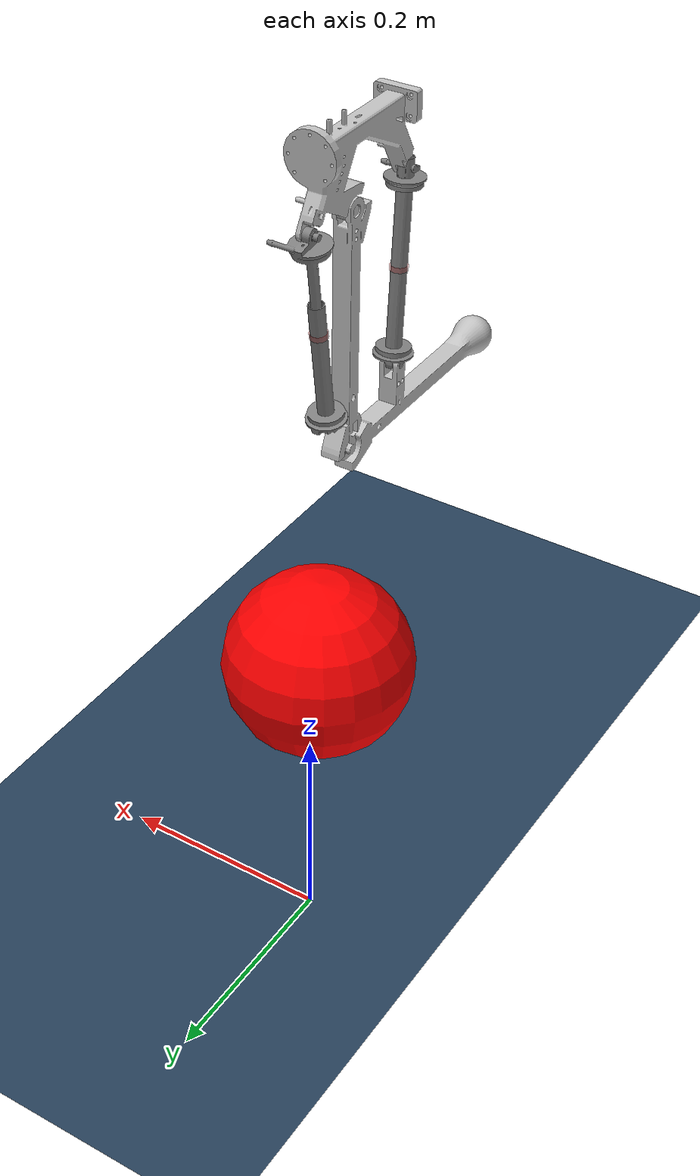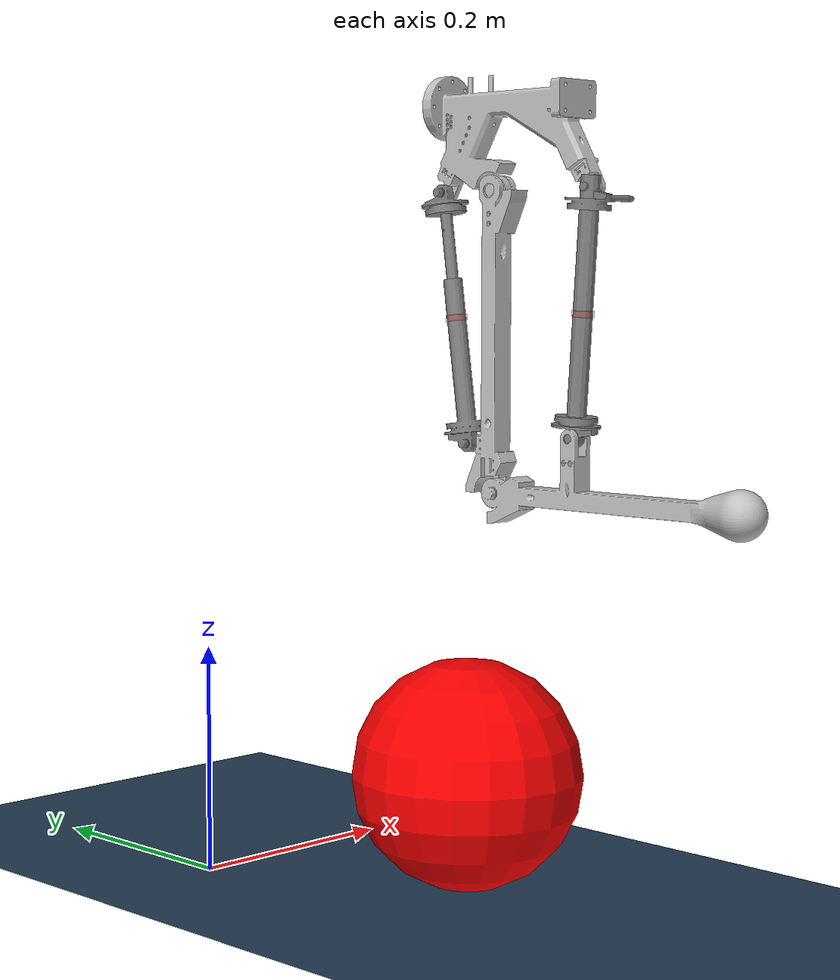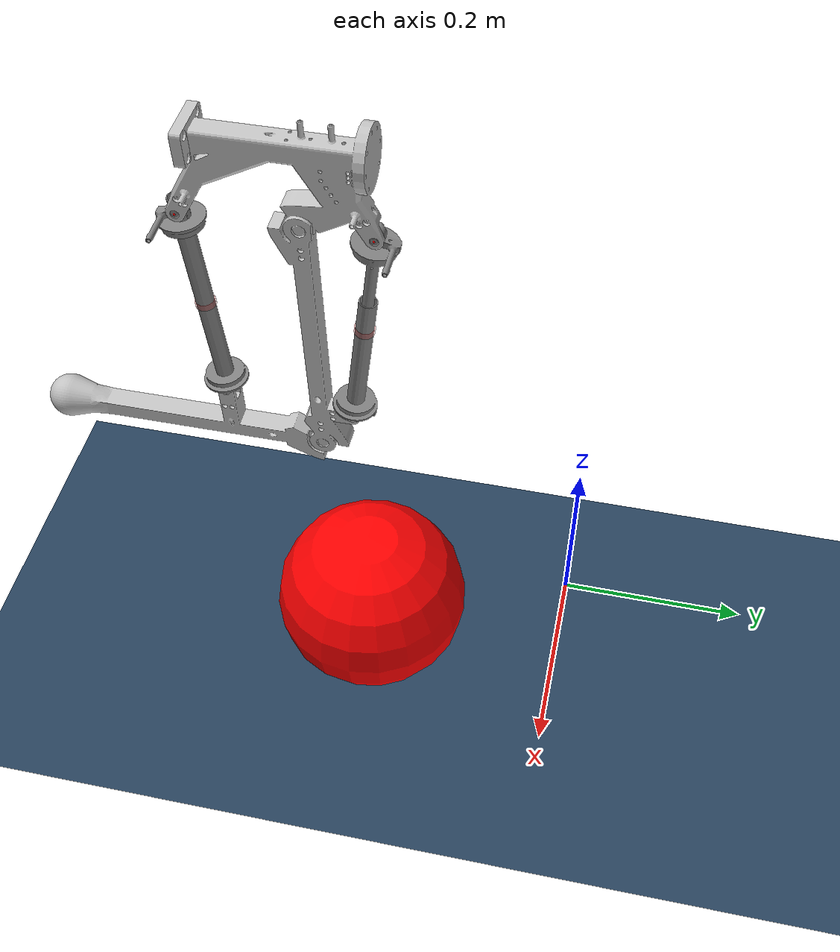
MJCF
<mujoco model="v2_4">
  <compiler angle="radian"/>
  <option timestep="0.005" iterations="1000" gravity="0 0 -9.8" tolerance="1e-10"/>
  <option>
  </option>
  <!-- ball size: 0.005 for sim and 0.01 for drawing the picture -->

  <default>
    <geom density="418"/>
  </default>

  <asset>
    <texture name="grid" type="2d" builtin="checker" rgb1=".1 .2 .3"
      rgb2=".2 .3 .4" width="300" height="300"/>
    <material name="grid" texture="grid" texrepeat="8 8" reflectance=".2"/>

    <mesh name="base_link" file="base_single.STL"/>
    <mesh name="LF_Thigh" file="LF_Thigh.STL"/>
    <mesh name="LF_Calf" file="LF_Calf.STL"/>
    <mesh name="RF_Thigh" file="RF_Thigh.STL"/>
    <mesh name="RF_Calf" file="RF_Calf.STL"/>
    <mesh name="LB_Thigh" file="LB_Thigh.STL"/>
    <mesh name="LB_Calf" file="LB_Calf.STL"/>
    <mesh name="RB_Thigh" file="RB_Thigh.STL"/>
    <mesh name="RB_Calf" file="RB_Calf.STL"/>
    <mesh name="LF_MAA_UPLink" file="LF_MAA_UPLink.STL"/>
    <mesh name="LF_MAA_FM_Link" file="LF_MAA_FM_Link.STL"/>
    <mesh name="LF_MAA_LOLink" file="LF_MAA_LOLink.STL"/>
    <mesh name="RF_MAA_UPLink" file="RF_MAA_UPLink.STL"/>
    <mesh name="RF_MAA_FM_Link" file="RF_MAA_FM_Link.STL"/>
    <mesh name="RF_MAA_LOLink" file="RF_MAA_LOLink.STL"/>
    <mesh name="LB_MAA_UPLink" file="LB_MAA_UPLink.STL"/>
    <mesh name="LB_MAA_FM_Link" file="LB_MAA_FM_Link.STL"/>
    <mesh name="LB_MAA_LOLink" file="LB_MAA_LOLink.STL"/>
    <mesh name="RB_MAA_UPLink" file="RB_MAA_UPLink.STL"/>
    <mesh name="RB_MAA_FM_Link" file="RB_MAA_FM_Link.STL"/>
    <mesh name="RB_MAA_LOLink" file="RB_MAA_LOLink.STL"/>
    <mesh name="LF_BAA_UPLink" file="LF_BAA_UPLink.STL"/>
    <mesh name="LF_BAA_FM_Link" file="LF_BAA_FM_Link.STL"/>
    <mesh name="LF_BAA_LOLink" file="LF_BAA_LOLink.STL"/>
    <mesh name="RF_BAA_UPLink" file="RF_BAA_UPLink.STL"/>
    <mesh name="RF_BAA_FM_Link" file="RF_BAA_FM_Link.STL"/>
    <mesh name="RF_BAA_LOLink" file="RF_BAA_LOLink.STL"/>
    <mesh name="LB_BAA_UPLink" file="LB_BAA_UPLink.STL"/>
    <mesh name="LB_BAA_FM_Link" file="LB_BAA_FM_Link.STL"/>
    <mesh name="LB_BAA_LOLink" file="LB_BAA_LOLink.STL"/>
    <mesh name="RB_BAA_UPLink" file="RB_BAA_UPLink.STL"/>
    <mesh name="RB_BAA_FM_LINK" file="RB_BAA_FM_LINK.STL"/>
    <mesh name="RB_BAA_LOLink" file="RB_BAA_LOLink.STL"/>
  </asset>

  <worldbody>
    <light name="top" pos="0 0 3" dir="0 0 -1" diffuse="0.5 0.5 0.5" specular="0.5 0.5 0.5"/>
    <light name="left" pos="0 1 3" dir="0 0 -1" diffuse="0.5 0.5 0.5" specular="0.5 0.5 0.5"/>
    <light name="right" pos="0 -1 3" dir="0 0 -1" diffuse="0.5 0.5 0.5" specular="0.5 0.5 0.5"/>
    <light name="front" pos="-1 0 3" dir="0 0 -1" diffuse="0.5 0.5 0.5" specular="0.5 0.5 0.5"/>
    <light name="back" pos="1 0 5" dir="0 0 -1" diffuse="0.5 0.5 0.5" specular="0.5 0.5 0.5"/>
    <geom size="10 10 .01" type="plane" material="grid" friction="1 0.05 0.01"  rgba="0.5 0.5 0.5 1"/>

    <camera name="closeup" pos="-0.940 -0.270 0.728" xyaxes="0.014 -1.000 -0.000 0.346 0.005 0.938"/>

    <body name="base" pos="0.0 0 0.7">
      <geom type="mesh" rgba="0.75294 0.75294 0.75294 0.95" mesh="base_link" mass="0.155" contype="0" conaffinity="0"/>

      <body name="RB_Thigh" pos="0.1245 -0.235 -0.105">
        <joint name="RB_Shoulder" pos="0 0 0" axis="-1 0 0" range="-1.0471975512 1.0471975512" damping="0.0" stiffness="0" springref="0"/>
        <geom type="mesh" rgba="0.752941 0.752941 0.752941 0.95" mesh="RB_Thigh" mass="0.086" contype="0" conaffinity="0"/>
        <body name="RB_Calf" pos="0 0 -0.25">
          <joint name="RB_Elbow" pos="0 0 0" axis="-1 0 0" range="-1.57 0.5235987756" damping="0.0" stiffness="0" springref="0"/>
          <geom name="foot_geom" type="mesh" rgba="0.752941 0.752941 0.752941 0.95" mesh="RB_Calf" mass="0.1033" friction="1 0.005 0.0001"/>
          <geom name="_foot_geom" pos="0 -0.25 0" type="sphere" size="0.001" mass="0.001" friction="1 0.005 0.0001"/>

        </body>

      </body>

      <body name="RB_MAA_UPLink" pos="0.125 -0.175 -0.105">
        <joint name="RB_MAA_UpJoint" pos="0 0 0" axis="-1 0 0" damping="0" stiffness="0" springref="0"/>
        <geom type="mesh" rgba="0.5 0.5 0.5 0.9" mesh="RB_MAA_UPLink" mass="0.00001" contype="0" conaffinity="0"/>
        <geom type="sphere" size="0.001" rgba="1 0 0 1" mass="0.03108" contype="0" conaffinity="0"/>

        <body name="RB_MAA_FM_Link" pos="-0.01 -0.015 -0.105">
          <joint name="RB_MAA_SlideJoint" pos="0 0 0" axis="0 -0.141421 -0.989949" type="slide" damping="22.68" stiffness="282.0592168220622" springref="-0.024065093741353696"/>
          <geom type="mesh" rgba="1 0 0 0.1" mesh="RB_MAA_FM_Link" mass="0.00001" contype="0" conaffinity="0"/>
          <geom type="sphere" size="0.001" rgba="1 0 0 1" mass="0.12432" contype="0" conaffinity="0"/>

          <body name="RB_MAA_LOLink" pos="0.01 -0.015 -0.105">
            <joint name="RB_MAA_FM_SlideJoint" pos="0 0 0" axis="0 -0.141421 -0.989949" type="slide" damping="22.68" stiffness="282.0592168220622" springref="-0.024065093741353696"/>
            <geom type="mesh" rgba="0.5 0.5 0.5 0.9" mesh="RB_MAA_LOLink" mass="0.00001" contype="0" conaffinity="0"/>
            <geom type="sphere" size="0.001" rgba="1 0 0 1" mass="0.03108" contype="0" conaffinity="0"/>
          </body>

        </body>

      </body>

      <body name="RB_BAA_UPLink" pos="0.125 -0.335 -0.105">
        <joint name="RB_BAA_UpJoint" pos="0 0 0" axis="-1 0 0" damping="0" stiffness="0" springref="0"/>
        <geom type="mesh" rgba="0.5 0.5 0.5 0.9" mesh="RB_BAA_UPLink" mass="0.00001" contype="0" conaffinity="0"/>
        <geom type="sphere" size="0.001" rgba="1 0 0 1" mass="0.04544333333" contype="0" conaffinity="0"/>

        <body name="RB_BAA_FM_LINK" pos="-0.01 0.00669873 -0.1">
          <joint name="RB_BAA_SlideJoint" pos="0 0 0" axis="0 0.0668375 -0.997764" type="slide" damping="21.8" stiffness="227.59569701085474" springref="0.028775886229521555"/>
          <geom type="mesh" rgba="1 0 0 0.1" mesh="RB_BAA_FM_LINK" mass="0.00001" contype="0" conaffinity="0"/>
          <geom type="sphere" size="0.001" rgba="1 0 0 1" mass="0.1817733333" contype="0" conaffinity="0"/>

          <body name="RB_BAA_LOLink" pos="0.01 0.00669873 -0.1">
            <joint name="RB_BAA_FM_SlideJoint" pos="0 0 0" axis="0 0.0668375 -0.997764" type="slide" damping="21.8" stiffness="227.59569701085474" springref="0.028775886229521555"/>
            <geom type="mesh" rgba="0.5 0.5 0.5 0.9" mesh="RB_BAA_LOLink" mass="0.00001" contype="0" conaffinity="0"/>
            <geom type="sphere" size="0.001" rgba="1 0 0 1" mass="0.04544333333" contype="0" conaffinity="0"/>
          </body>

        </body>

      </body>

    </body>
  <body name="ball" pos="0.12 -0.2 0.10">
    <geom name="ball_geom" type="sphere" size="0.1" rgba="1 0 0 1" mass="0.01" friction="1 0.05 0.01"/>
    <freejoint/>
  </body>

  </worldbody>

  <!--  Add position actuators for RB_BAA_LowerJoint and others -->
  <actuator>
    <motor joint="RB_MAA_SlideJoint" ctrllimited="true" ctrlrange="-200 200" />
    <motor joint="RB_MAA_FM_SlideJoint" ctrllimited="true" ctrlrange="-200 200" />
    <motor joint="RB_BAA_SlideJoint" ctrllimited="true" ctrlrange="-200 200" />
    <motor joint="RB_BAA_FM_SlideJoint" ctrllimited="true" ctrlrange="-200 200" />
  </actuator>

  <!-- build connections, such as RB_BAA_LOLink with RB_Calf -->
  <equality>
    <connect name="RB_MAA_LOLink" body1="RB_MAA_LOLink" body2="RB_Thigh" anchor="0 0 0" solref="0.001 1" solimp="0.95 0.99 0.00001 0.1 2"/>
    <connect name="RB_BAA_LOLink" body1="RB_BAA_LOLink" body2="RB_Calf" anchor="0 0 0" solref="0.001 1" solimp="0.95 0.99 0.00001 0.1 2"/>

    <!-- FM's equality constraints -->
    <joint name="RB_MAA_FM" joint1="RB_MAA_SlideJoint" joint2="RB_MAA_FM_SlideJoint" solimp="0.95 0.99 0.00001 0.1 2"/>
    <joint name="RB_BAA_FM" joint1="RB_BAA_SlideJoint" joint2="RB_BAA_FM_SlideJoint" solimp="0.95 0.99 0.00001 0.1 2"/>
  </equality>

  <sensor>
  </sensor>

</mujoco>
